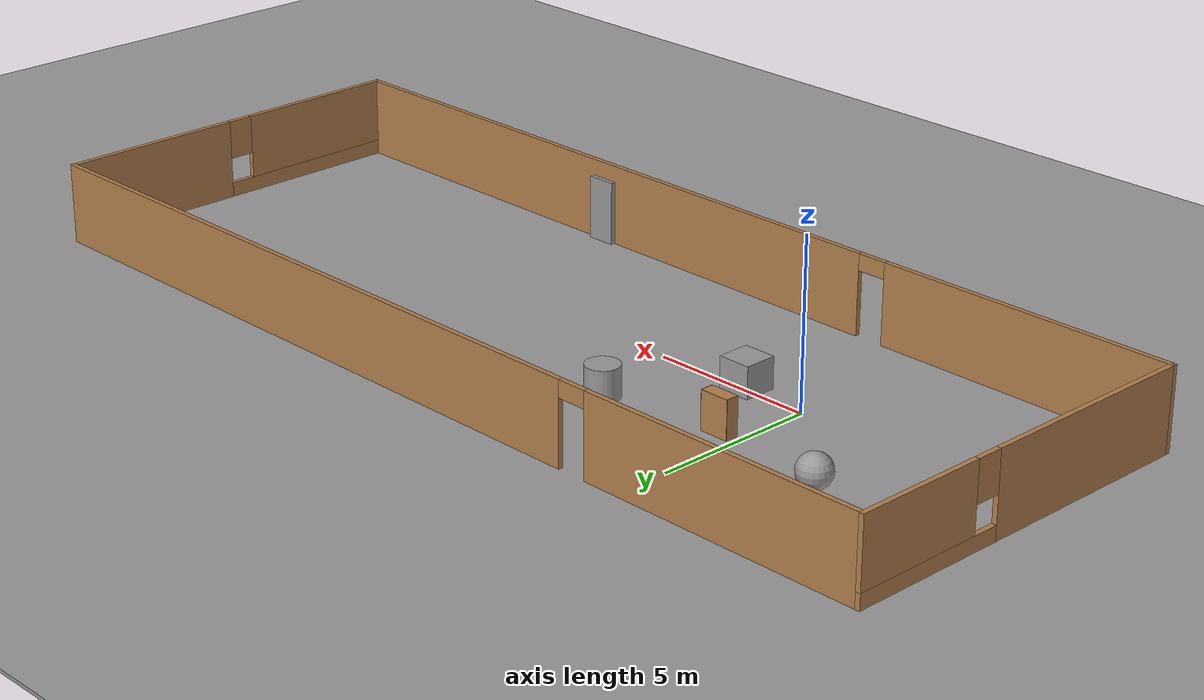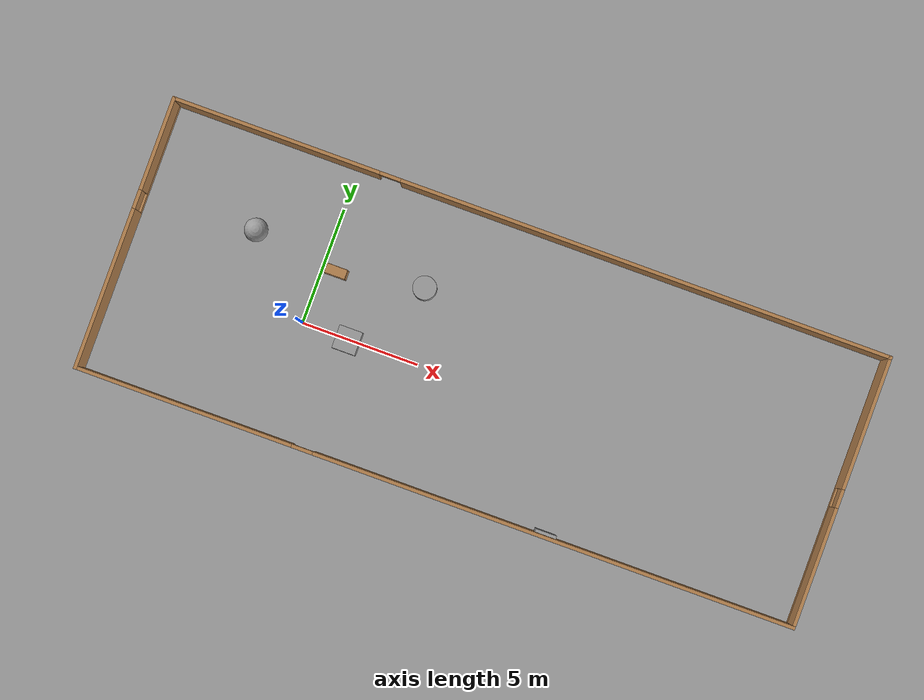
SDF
<sdf version="1.7">
 <world name="default">
  <light name="sun" type="directional">
   <pose>0 0 10 0 -0 0</pose>
   <diffuse>0.8 0.8 0.8 1</diffuse>
   <specular>0.2 0.2 0.2 1</specular>
   <attenuation>
    <range>1000</range>
    <constant>0.9</constant>
    <linear>0.01</linear>
    <quadratic>0.001</quadratic>
   </attenuation>
   <direction>-0.5 0.1 -0.9</direction>
   <spot><inner_angle>0</inner_angle><outer_angle>0</outer_angle><falloff>0</falloff></spot>
  </light>
  <model name="ground_plane">
   <static>1</static>
   <link name="link">
    <collision name="collision">
     <geometry><plane><normal>0 0 1</normal><size>100 100</size></plane></geometry>
     <surface><friction><ode><mu>100</mu><mu2>50</mu2></ode></friction></surface>
    </collision>
    <visual name="visual">
     <cast_shadows>0</cast_shadows>
     <geometry><plane><normal>0 0 1</normal><size>100 100</size></plane></geometry>
     <material>
      <script><uri>file://media/materials/scripts/gazebo.material</uri><name>Gazebo/Grey</name></script>
     </material>
    </visual>
   </link>
  </model>
  <gravity>0 0 -9.8</gravity>
  <magnetic_field>6e-06 2.3e-05 -4.2e-05</magnetic_field>
  <atmosphere type="adiabatic"/>
  <physics type="ode">
   <max_step_size>0.001</max_step_size>
   <real_time_factor>1</real_time_factor>
   <real_time_update_rate>1000</real_time_update_rate>
  </physics>
  <scene><ambient>0.4 0.4 0.4 1</ambient><background>0.7 0.7 0.7 1</background><shadows>1</shadows></scene>
  <audio><device>default</device></audio>
  <spherical_coordinates>
   <surface_model>EARTH_WGS84</surface_model>
   <latitude_deg>0</latitude_deg>
   <longitude_deg>0</longitude_deg>
   <elevation>0</elevation>
   <heading_deg>0</heading_deg>
  </spherical_coordinates>
  <model name="ground_plane_0">
   <static>1</static>
   <link name="link">
    <collision name="collision">
     <geometry><plane><normal>0 0 1</normal><size>100 100</size></plane></geometry>
     <surface><friction><ode><mu>100</mu><mu2>50</mu2></ode></friction></surface>
    </collision>
    <visual name="visual">
     <cast_shadows>0</cast_shadows>
     <geometry><plane><normal>0 0 1</normal><size>100 100</size></plane></geometry>
     <material>
      <script><uri>file://media/materials/scripts/gazebo.material</uri><name>Gazebo/Grey</name></script>
     </material>
    </visual>
   </link>
   <pose>-1.70372 -1.27011 0 0 -0 0</pose>
  </model>
  <model name="bookshelf">
   <static>1</static>
   <link name="link">
    <inertial><mass>1</mass></inertial>
    <collision name="back">
     <pose>0 0.005 0.6 0 -0 0</pose>
     <geometry><box><size>0.9 0.01 1.2</size></box></geometry>
    </collision>
    <visual name="visual1">
     <pose>0 0.005 0.6 0 -0 0</pose>
     <geometry><box><size>0.9 0.01 1.2</size></box></geometry>
     <material>
      <script><uri>file://media/materials/scripts/gazebo.material</uri><name>Gazebo/Wood</name></script>
     </material>
    </visual>
    <collision name="left_side">
     <pose>0.45 -0.195 0.6 0 -0 0</pose>
     <geometry><box><size>0.02 0.4 1.2</size></box></geometry>
    </collision>
    <visual name="visual2">
     <pose>0.45 -0.195 0.6 0 -0 0</pose>
     <geometry><box><size>0.02 0.4 1.2</size></box></geometry>
     <material>
      <script><uri>file://media/materials/scripts/gazebo.material</uri><name>Gazebo/Wood</name></script>
     </material>
    </visual>
    <collision name="right_side">
     <pose>-0.45 -0.195 0.6 0 -0 0</pose>
     <geometry><box><size>0.02 0.4 1.2</size></box></geometry>
    </collision>
    <visual name="visual3">
     <pose>-0.45 -0.195 0.6 0 -0 0</pose>
     <geometry><box><size>0.02 0.4 1.2</size></box></geometry>
     <material>
      <script><uri>file://media/materials/scripts/gazebo.material</uri><name>Gazebo/Wood</name></script>
     </material>
    </visual>
    <collision name="bottom">
     <pose>0 -0.195 0.03 0 -0 0</pose>
     <geometry><box><size>0.88 0.4 0.06</size></box></geometry>
    </collision>
    <visual name="visual4">
     <pose>0 -0.195 0.03 0 -0 0</pose>
     <geometry><box><size>0.88 0.4 0.06</size></box></geometry>
     <material>
      <script><uri>file://media/materials/scripts/gazebo.material</uri><name>Gazebo/Wood</name></script>
     </material>
    </visual>
    <collision name="top">
     <pose>0 -0.195 1.19 0 -0 0</pose>
     <geometry><box><size>0.88 0.4 0.02</size></box></geometry>
    </collision>
    <visual name="visual5">
     <pose>0 -0.195 1.19 0 -0 0</pose>
     <geometry><box><size>0.88 0.4 0.02</size></box></geometry>
     <material>
      <script><uri>file://media/materials/scripts/gazebo.material</uri><name>Gazebo/Wood</name></script>
     </material>
    </visual>
    <collision name="low_shelf">
     <pose>0 -0.195 0.43 0 -0 0</pose>
     <geometry><box><size>0.88 0.4 0.02</size></box></geometry>
    </collision>
    <visual name="visual6">
     <pose>0 -0.195 0.43 0 -0 0</pose>
     <geometry><box><size>0.88 0.4 0.02</size></box></geometry>
     <material>
      <script><uri>file://media/materials/scripts/gazebo.material</uri><name>Gazebo/Wood</name></script>
     </material>
    </visual>
    <collision name="high_shelf">
     <pose>0 -0.195 0.8 0 -0 0</pose>
     <geometry><box><size>0.88 0.4 0.02</size></box></geometry>
    </collision>
    <visual name="visual7">
     <pose>0 -0.195 0.8 0 -0 0</pose>
     <geometry><box><size>0.88 0.4 0.02</size></box></geometry>
     <material>
      <script><uri>file://media/materials/scripts/gazebo.material</uri><name>Gazebo/Wood</name></script>
     </material>
    </visual>
   </link>
   <pose>0.609515 2.64107 0 0 -0 0</pose>
  </model>
  <model name="test">
   <pose>7.54928 0.94773 0 0 -0 0</pose>
   <link name="Door_1">
    <collision name="Door_1_Collision">
     <geometry><box><size>0.9 0.17 2</size></box></geometry>
     <pose>0 0 1 0 -0 0</pose>
    </collision>
    <visual name="Door_1_Visual">
     <pose>0 0 1 0 -0 0</pose>
     <geometry><box><size>0.9 0.17 2</size></box></geometry>
     <material>
      <script><uri>file://media/materials/scripts/gazebo.material</uri><name>Gazebo/Grey</name></script>
     </material>
    </visual>
    <pose>4.75702 -5.66946 0 0 -0 0</pose>
   </link>
   <link name="Wall_5">
    <pose>-15.425 0 0 0 -0 1.5708</pose>
    <visual name="Wall_5_Visual_0">
     <pose>-2.4138 0 1.25 0 -0 0</pose>
     <geometry><box><size>6.92239 0.15 2.5</size></box></geometry>
     <material>
      <script><uri>file://media/materials/scripts/gazebo.material</uri><name>Gazebo/Wood</name></script>
      <ambient>1 1 1 1</ambient>
     </material>
     <meta><layer>0</layer></meta>
    </visual>
    <collision name="Wall_5_Collision_0">
     <geometry><box><size>6.92239 0.15 2.5</size></box></geometry>
     <pose>-2.4138 0 1.25 0 -0 0</pose>
    </collision>
    <visual name="Wall_5_Visual_1">
     <pose>3.4612 0 0.25 0 -0 0</pose>
     <geometry><box><size>4.82761 0.15 0.5</size></box></geometry>
     <material>
      <script><uri>file://media/materials/scripts/gazebo.material</uri><name>Gazebo/Wood</name></script>
      <ambient>1 1 1 1</ambient>
     </material>
     <meta><layer>0</layer></meta>
    </visual>
    <collision name="Wall_5_Collision_1">
     <geometry><box><size>4.82761 0.15 0.5</size></box></geometry>
     <pose>3.4612 0 0.25 0 -0 0</pose>
    </collision>
    <visual name="Wall_5_Visual_2">
     <pose>3.8612 0 1.5 0 -0 0</pose>
     <geometry><box><size>4.02761 0.15 2</size></box></geometry>
     <material>
      <script><uri>file://media/materials/scripts/gazebo.material</uri><name>Gazebo/Wood</name></script>
      <ambient>1 1 1 1</ambient>
     </material>
     <meta><layer>0</layer></meta>
    </visual>
    <collision name="Wall_5_Collision_2">
     <geometry><box><size>4.02761 0.15 2</size></box></geometry>
     <pose>3.8612 0 1.5 0 -0 0</pose>
    </collision>
    <visual name="Wall_5_Visual_3">
     <pose>1.44739 0 1.9 0 -0 0</pose>
     <geometry><box><size>0.8 0.15 1.2</size></box></geometry>
     <material>
      <script><uri>file://media/materials/scripts/gazebo.material</uri><name>Gazebo/Wood</name></script>
      <ambient>1 1 1 1</ambient>
     </material>
     <meta><layer>0</layer></meta>
    </visual>
    <collision name="Wall_5_Collision_3">
     <geometry><box><size>0.8 0.15 1.2</size></box></geometry>
     <pose>1.44739 0 1.9 0 -0 0</pose>
    </collision>
   </link>
   <link name="Wall_6">
    <pose>0 5.8 0 0 -0 0</pose>
    <visual name="Wall_6_Visual_0">
     <pose>-11.0239 0 1.25 0 -0 0</pose>
     <geometry><box><size>8.95218 0.15 2.5</size></box></geometry>
     <material>
      <script><uri>file://media/materials/scripts/gazebo.material</uri><name>Gazebo/Wood</name></script>
      <ambient>1 1 1 1</ambient>
     </material>
     <meta><layer>0</layer></meta>
    </visual>
    <collision name="Wall_6_Collision_0">
     <geometry><box><size>8.95218 0.15 2.5</size></box></geometry>
     <pose>-11.0239 0 1.25 0 -0 0</pose>
    </collision>
    <visual name="Wall_6_Visual_1">
     <pose>4.92609 0 1.25 0 -0 0</pose>
     <geometry><box><size>21.1478 0.15 2.5</size></box></geometry>
     <material>
      <script><uri>file://media/materials/scripts/gazebo.material</uri><name>Gazebo/Wood</name></script>
      <ambient>1 1 1 1</ambient>
     </material>
     <meta><layer>0</layer></meta>
    </visual>
    <collision name="Wall_6_Collision_1">
     <geometry><box><size>21.1478 0.15 2.5</size></box></geometry>
     <pose>4.92609 0 1.25 0 -0 0</pose>
    </collision>
    <visual name="Wall_6_Visual_2">
     <pose>-6.09782 0 2.25 0 -0 0</pose>
     <geometry><box><size>0.9 0.15 0.5</size></box></geometry>
     <material>
      <script><uri>file://media/materials/scripts/gazebo.material</uri><name>Gazebo/Wood</name></script>
      <ambient>1 1 1 1</ambient>
     </material>
     <meta><layer>0</layer></meta>
    </visual>
    <collision name="Wall_6_Collision_2">
     <geometry><box><size>0.9 0.15 0.5</size></box></geometry>
     <pose>-6.09782 0 2.25 0 -0 0</pose>
    </collision>
   </link>
   <link name="Wall_7">
    <pose>15.425 0 0 0 -0 -1.5708</pose>
    <visual name="Wall_7_Visual_0">
     <pose>-3.00516 0 1.25 0 -0 0</pose>
     <geometry><box><size>5.73968 0.15 2.5</size></box></geometry>
     <material>
      <script><uri>file://media/materials/scripts/gazebo.material</uri><name>Gazebo/Wood</name></script>
      <ambient>1 1 1 1</ambient>
     </material>
     <meta><layer>0</layer></meta>
    </visual>
    <collision name="Wall_7_Collision_0">
     <geometry><box><size>5.73968 0.15 2.5</size></box></geometry>
     <pose>-3.00516 0 1.25 0 -0 0</pose>
    </collision>
    <visual name="Wall_7_Visual_1">
     <pose>2.86984 0 0.25 0 -0 0</pose>
     <geometry><box><size>6.01032 0.15 0.5</size></box></geometry>
     <material>
      <script><uri>file://media/materials/scripts/gazebo.material</uri><name>Gazebo/Wood</name></script>
      <ambient>1 1 1 1</ambient>
     </material>
     <meta><layer>0</layer></meta>
    </visual>
    <collision name="Wall_7_Collision_1">
     <geometry><box><size>6.01032 0.15 0.5</size></box></geometry>
     <pose>2.86984 0 0.25 0 -0 0</pose>
    </collision>
    <visual name="Wall_7_Visual_2">
     <pose>3.26984 0 1.5 0 -0 0</pose>
     <geometry><box><size>5.21031 0.15 2</size></box></geometry>
     <material>
      <script><uri>file://media/materials/scripts/gazebo.material</uri><name>Gazebo/Wood</name></script>
      <ambient>1 1 1 1</ambient>
     </material>
     <meta><layer>0</layer></meta>
    </visual>
    <collision name="Wall_7_Collision_2">
     <geometry><box><size>5.21031 0.15 2</size></box></geometry>
     <pose>3.26984 0 1.5 0 -0 0</pose>
    </collision>
    <visual name="Wall_7_Visual_3">
     <pose>0.264685 0 1.9 0 -0 0</pose>
     <geometry><box><size>0.8 0.15 1.2</size></box></geometry>
     <material>
      <script><uri>file://media/materials/scripts/gazebo.material</uri><name>Gazebo/Wood</name></script>
      <ambient>1 1 1 1</ambient>
     </material>
     <meta><layer>0</layer></meta>
    </visual>
    <collision name="Wall_7_Collision_3">
     <geometry><box><size>0.8 0.15 1.2</size></box></geometry>
     <pose>0.264685 0 1.9 0 -0 0</pose>
    </collision>
   </link>
   <link name="Wall_8">
    <pose>0 -5.8 0 0 -0 3.14159</pose>
    <visual name="Wall_8_Visual_0">
     <pose>-5.13625 0 1.25 0 -0 0</pose>
     <geometry><box><size>20.7275 0.15 2.5</size></box></geometry>
     <material>
      <script><uri>file://media/materials/scripts/gazebo.material</uri><name>Gazebo/Wood</name></script>
      <ambient>1 1 1 1</ambient>
     </material>
     <meta><layer>0</layer></meta>
    </visual>
    <collision name="Wall_8_Collision_0">
     <geometry><box><size>20.7275 0.15 2.5</size></box></geometry>
     <pose>-5.13625 0 1.25 0 -0 0</pose>
    </collision>
    <visual name="Wall_8_Visual_1">
     <pose>10.8138 0 1.25 0 -0 0</pose>
     <geometry><box><size>9.3725 0.15 2.5</size></box></geometry>
     <material>
      <script><uri>file://media/materials/scripts/gazebo.material</uri><name>Gazebo/Wood</name></script>
      <ambient>1 1 1 1</ambient>
     </material>
     <meta><layer>0</layer></meta>
    </visual>
    <collision name="Wall_8_Collision_1">
     <geometry><box><size>9.3725 0.15 2.5</size></box></geometry>
     <pose>10.8138 0 1.25 0 -0 0</pose>
    </collision>
    <visual name="Wall_8_Visual_2">
     <pose>5.67751 0 2.25 0 -0 0</pose>
     <geometry><box><size>0.9 0.15 0.5</size></box></geometry>
     <material>
      <script><uri>file://media/materials/scripts/gazebo.material</uri><name>Gazebo/Wood</name></script>
      <ambient>1 1 1 1</ambient>
     </material>
     <meta><layer>0</layer></meta>
    </visual>
    <collision name="Wall_8_Collision_2">
     <geometry><box><size>0.9 0.15 0.5</size></box></geometry>
     <pose>5.67751 0 2.25 0 -0 0</pose>
    </collision>
   </link>
   <static>1</static>
  </model>
  <model name="unit_cylinder">
   <pose>4.24705 3.05055 0.499997 -4e-06 -3e-06 -0</pose>
   <link name="link">
    <inertial>
     <mass>1</mass>
     <inertia><ixx>0.145833</ixx><ixy>0</ixy><ixz>0</ixz><iyy>0.145833</iyy><iyz>0</iyz><izz>0.125</izz></inertia>
    </inertial>
    <collision name="collision">
     <geometry><cylinder><radius>0.5</radius><length>1</length></cylinder></geometry>
    </collision>
    <visual name="visual">
     <geometry><cylinder><radius>0.5</radius><length>1</length></cylinder></geometry>
     <material>
      <script><name>Gazebo/Grey</name><uri>file://media/materials/scripts/gazebo.material</uri></script>
     </material>
    </visual>
   </link>
  </model>
  <model name="unit_box">
   <pose>2 -0.045245 0.499999 -2e-06 -0 -0</pose>
   <link name="link">
    <inertial>
     <mass>1</mass>
     <inertia>
      <ixx>0.166667</ixx>
      <ixy>0</ixy>
      <ixz>0</ixz>
      <iyy>0.166667</iyy>
      <iyz>0</iyz>
      <izz>0.166667</izz>
     </inertia>
    </inertial>
    <collision name="collision"><geometry><box><size>1 1 1</size></box></geometry></collision>
    <visual name="visual">
     <geometry><box><size>1 1 1</size></box></geometry>
     <material>
      <script><name>Gazebo/Grey</name><uri>file://media/materials/scripts/gazebo.material</uri></script>
     </material>
    </visual>
   </link>
  </model>
  <model name="unit_sphere">
   <pose>-3.09909 2.9501 0.49999 0 -0 0</pose>
   <link name="link">
    <inertial>
     <mass>1</mass>
     <inertia><ixx>0.1</ixx><ixy>0</ixy><ixz>0</ixz><iyy>0.1</iyy><iyz>0</iyz><izz>0.1</izz></inertia>
    </inertial>
    <collision name="collision"><geometry><sphere><radius>0.5</radius></sphere></geometry></collision>
    <visual name="visual">
     <geometry><sphere><radius>0.5</radius></sphere></geometry>
     <material>
      <script><name>Gazebo/Grey</name><uri>file://media/materials/scripts/gazebo.material</uri></script>
     </material>
    </visual>
   </link>
  </model>
 </world>
</sdf>
